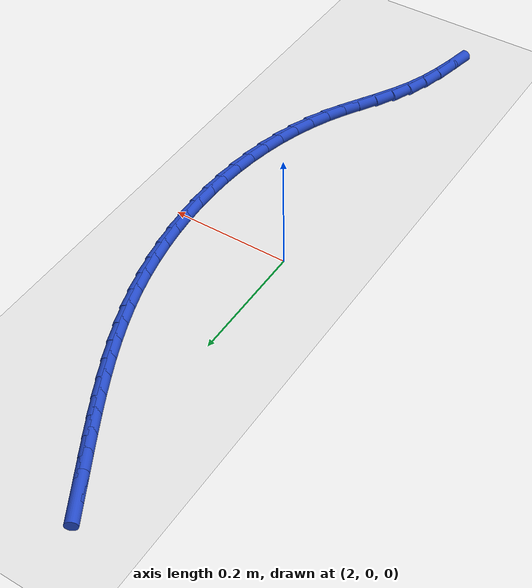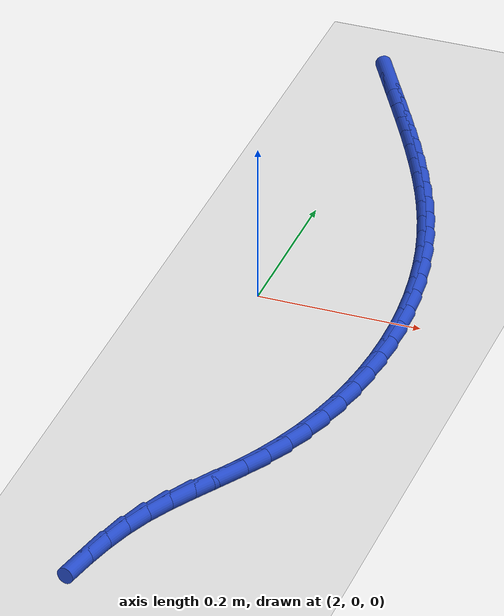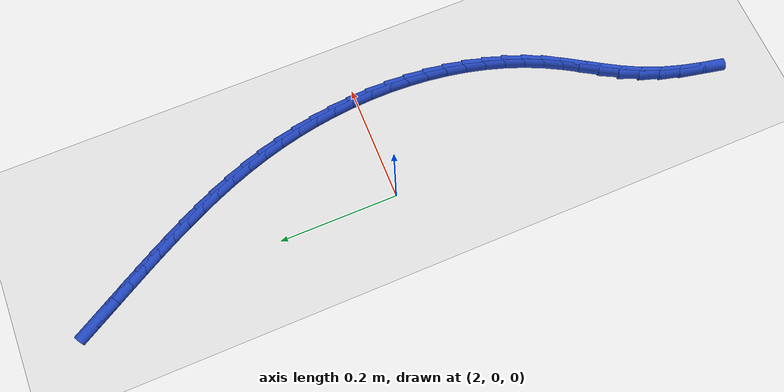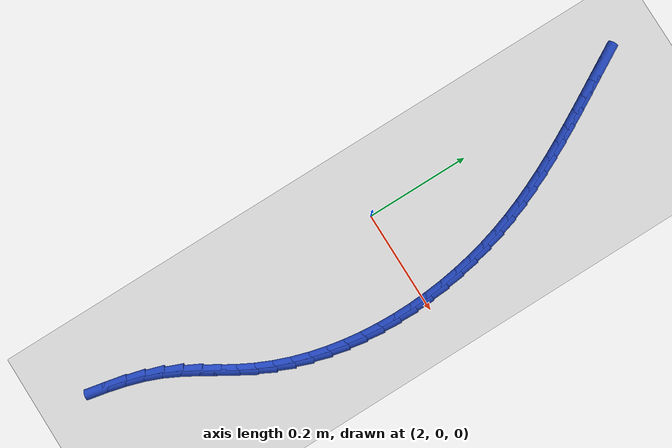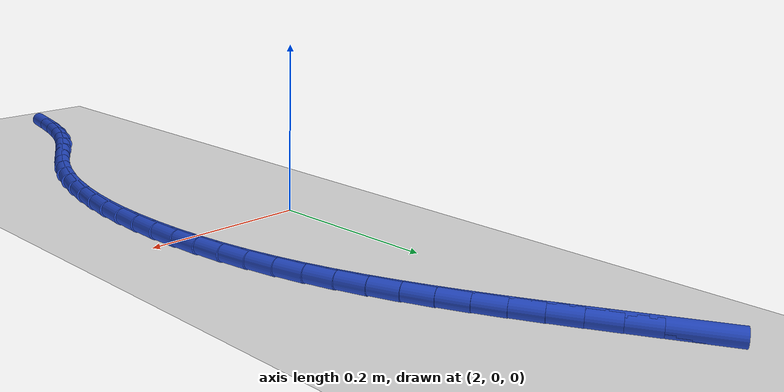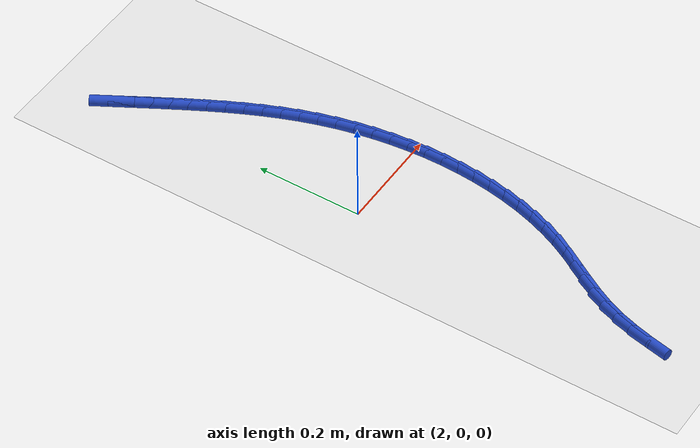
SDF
<sdf version="1.6">
 <world name="default">
  <model name="ground_plane">
   <static>1</static>
   <link name="link">
    <collision name="collision">
     <geometry><plane><normal>0 0 1</normal><size>100 100</size></plane></geometry>
     <surface><friction><ode><mu>100</mu><mu2>50</mu2></ode></friction></surface>
    </collision>
    <visual name="visual">
     <cast_shadows>0</cast_shadows>
     <geometry><plane><normal>0 0 1</normal><size>100 100</size></plane></geometry>
     <material>
      <script><uri>file://media/materials/scripts/gazebo.material</uri><name>Gazebo/WhiteGlow</name></script>
     </material>
    </visual>
   </link>
  </model>
  <model name="line">
   <link name="link_87">
    <pose>1.987801974819627 0.5035614657696744 0.01 0 1.57 -1.0558931195700973</pose>
    <collision name="collision">
     <geometry><cylinder><radius>0.01</radius><length>0.08</length></cylinder></geometry>
    </collision>
    <visual name="visual">
     <material>
      <script><name>Gazebo/Blue</name><uri>file://media/materials/scripts/gazebo.material</uri></script>
     </material>
     <geometry><cylinder><radius>0.01</radius><length>0.08</length></cylinder></geometry>
    </visual>
   </link>
   <link name="link_88">
    <pose>2.0042511495227027 0.47448975602382654 0.01 0 1.57 -1.0551968677047787</pose>
    <collision name="collision">
     <geometry><cylinder><radius>0.01</radius><length>0.08</length></cylinder></geometry>
    </collision>
    <visual name="visual">
     <material>
      <script><name>Gazebo/Blue</name><uri>file://media/materials/scripts/gazebo.material</uri></script>
     </material>
     <geometry><cylinder><radius>0.01</radius><length>0.08</length></cylinder></geometry>
    </visual>
   </link>
   <link name="link_89">
    <pose>2.020667356599426 0.4455233859962996 0.01 0 1.57 -1.0590475110282096</pose>
    <collision name="collision">
     <geometry><cylinder><radius>0.01</radius><length>0.08</length></cylinder></geometry>
    </collision>
    <visual name="visual">
     <material>
      <script><name>Gazebo/Blue</name><uri>file://media/materials/scripts/gazebo.material</uri></script>
     </material>
     <geometry><cylinder><radius>0.01</radius><length>0.08</length></cylinder></geometry>
    </visual>
   </link>
   <link name="link_90">
    <pose>2.0369230768808797 0.41658095034973774 0.01 0 1.57 -1.067482902166082</pose>
    <collision name="collision">
     <geometry><cylinder><radius>0.01</radius><length>0.08</length></cylinder></geometry>
    </collision>
    <visual name="visual">
     <material>
      <script><name>Gazebo/Blue</name><uri>file://media/materials/scripts/gazebo.material</uri></script>
     </material>
     <geometry><cylinder><radius>0.01</radius><length>0.08</length></cylinder></geometry>
    </visual>
   </link>
   <link name="link_91">
    <pose>2.0528907911981484 0.3875810437467857 0.01 0 1.57 -1.0805316544826453</pose>
    <collision name="collision">
     <geometry><cylinder><radius>0.01</radius><length>0.08</length></cylinder></geometry>
    </collision>
    <visual name="visual">
     <material>
      <script><name>Gazebo/Blue</name><uri>file://media/materials/scripts/gazebo.material</uri></script>
     </material>
     <geometry><cylinder><radius>0.01</radius><length>0.08</length></cylinder></geometry>
    </visual>
   </link>
   <link name="link_92">
    <pose>2.068442980382315 0.3584422608500875 0.01 0 1.57 -1.0982075534994828</pose>
    <collision name="collision">
     <geometry><cylinder><radius>0.01</radius><length>0.08</length></cylinder></geometry>
    </collision>
    <visual name="visual">
     <material>
      <script><name>Gazebo/Blue</name><uri>file://media/materials/scripts/gazebo.material</uri></script>
     </material>
     <geometry><cylinder><radius>0.01</radius><length>0.08</length></cylinder></geometry>
    </visual>
   </link>
   <link name="link_93">
    <pose>2.08345212526446 0.3290831963222882 0.01 0 1.57 -1.120500999814698</pose>
    <collision name="collision">
     <geometry><cylinder><radius>0.01</radius><length>0.08</length></cylinder></geometry>
    </collision>
    <visual name="visual">
     <material>
      <script><name>Gazebo/Blue</name><uri>file://media/materials/scripts/gazebo.material</uri></script>
     </material>
     <geometry><cylinder><radius>0.01</radius><length>0.08</length></cylinder></geometry>
    </visual>
   </link>
   <link name="link_94">
    <pose>2.0977907066756694 0.299422444826032 0.01 0 1.57 -1.1473676706369809</pose>
    <collision name="collision">
     <geometry><cylinder><radius>0.01</radius><length>0.08</length></cylinder></geometry>
    </collision>
    <visual name="visual">
     <material>
      <script><name>Gazebo/Blue</name><uri>file://media/materials/scripts/gazebo.material</uri></script>
     </material>
     <geometry><cylinder><radius>0.01</radius><length>0.08</length></cylinder></geometry>
    </visual>
   </link>
   <link name="link_95">
    <pose>2.1113312054470246 0.26937860102396294 0.01 0 1.57 -1.1787149221556432</pose>
    <collision name="collision">
     <geometry><cylinder><radius>0.01</radius><length>0.08</length></cylinder></geometry>
    </collision>
    <visual name="visual">
     <material>
      <script><name>Gazebo/Blue</name><uri>file://media/materials/scripts/gazebo.material</uri></script>
     </material>
     <geometry><cylinder><radius>0.01</radius><length>0.08</length></cylinder></geometry>
    </visual>
   </link>
   <link name="link_96">
    <pose>2.123946102409608 0.2388702595787262 0.01 0 1.57 -1.2143869374222098</pose>
    <collision name="collision">
     <geometry><cylinder><radius>0.01</radius><length>0.08</length></cylinder></geometry>
    </collision>
    <visual name="visual">
     <material>
      <script><name>Gazebo/Blue</name><uri>file://media/materials/scripts/gazebo.material</uri></script>
     </material>
     <geometry><cylinder><radius>0.01</radius><length>0.08</length></cylinder></geometry>
    </visual>
   </link>
   <link name="link_97">
    <pose>2.1355078783945043 0.20781601515296597 0.01 0 1.57 -1.2541502210737032</pose>
    <collision name="collision">
     <geometry><cylinder><radius>0.01</radius><length>0.08</length></cylinder></geometry>
    </collision>
    <visual name="visual">
     <material>
      <script><name>Gazebo/Blue</name><uri>file://media/materials/scripts/gazebo.material</uri></script>
     </material>
     <geometry><cylinder><radius>0.01</radius><length>0.08</length></cylinder></geometry>
    </visual>
   </link>
   <link name="link_98">
    <pose>2.1458890142327958 0.1761344624093263 0.01 0 1.57 -1.2973289870470863</pose>
    <collision name="collision">
     <geometry><cylinder><radius>0.01</radius><length>0.08</length></cylinder></geometry>
    </collision>
    <visual name="visual">
     <material>
      <script><name>Gazebo/Blue</name><uri>file://media/materials/scripts/gazebo.material</uri></script>
     </material>
     <geometry><cylinder><radius>0.01</radius><length>0.08</length></cylinder></geometry>
    </visual>
   </link>
   <link name="link_99">
    <pose>2.1549694914208324 0.14376137810756445 0.01 0 1.57 -1.3411361033142222</pose>
    <collision name="collision">
     <geometry><cylinder><radius>0.01</radius><length>0.08</length></cylinder></geometry>
    </collision>
    <visual name="visual">
     <material>
      <script><name>Gazebo/Blue</name><uri>file://media/materials/scripts/gazebo.material</uri></script>
     </material>
     <geometry><cylinder><radius>0.01</radius><length>0.08</length></cylinder></geometry>
    </visual>
   </link>
   <link name="link_100">
    <pose>2.1626847931680593 0.11075967917304792 0.01 0 1.57 -1.3846608863334027</pose>
    <collision name="collision">
     <geometry><cylinder><radius>0.01</radius><length>0.08</length></cylinder></geometry>
    </collision>
    <visual name="visual">
     <material>
      <script><name>Gazebo/Blue</name><uri>file://media/materials/scripts/gazebo.material</uri></script>
     </material>
     <geometry><cylinder><radius>0.01</radius><length>0.08</length></cylinder></geometry>
    </visual>
   </link>
   <link name="link_101">
    <pose>2.168995305000204 0.07724932734002724 0.01 0 1.57 -1.4282187004355398</pose>
    <collision name="collision">
     <geometry><cylinder><radius>0.01</radius><length>0.08</length></cylinder></geometry>
    </collision>
    <visual name="visual">
     <material>
      <script><name>Gazebo/Blue</name><uri>file://media/materials/scripts/gazebo.material</uri></script>
     </material>
     <geometry><cylinder><radius>0.01</radius><length>0.08</length></cylinder></geometry>
    </visual>
   </link>
   <link name="link_102">
    <pose>2.17386153047113 0.043350554714889224 0.01 0 1.57 -1.4721203783231147</pose>
    <collision name="collision">
     <geometry><cylinder><radius>0.01</radius><length>0.08</length></cylinder></geometry>
    </collision>
    <visual name="visual">
     <material>
      <script><name>Gazebo/Blue</name><uri>file://media/materials/scripts/gazebo.material</uri></script>
     </material>
     <geometry><cylinder><radius>0.01</radius><length>0.08</length></cylinder></geometry>
    </visual>
   </link>
   <link name="link_103">
    <pose>2.1772439731346993 0.009183593404019204 0.01 0 1.57 -1.5166697957087492</pose>
    <collision name="collision">
     <geometry><cylinder><radius>0.01</radius><length>0.08</length></cylinder></geometry>
    </collision>
    <visual name="visual">
     <material>
      <script><name>Gazebo/Blue</name><uri>file://media/materials/scripts/gazebo.material</uri></script>
     </material>
     <geometry><cylinder><radius>0.01</radius><length>0.08</length></cylinder></geometry>
    </visual>
   </link>
   <link name="link_104">
    <pose>2.1791031365447746 -0.02513132448619691 0.01 0 1.57 -1.5621662292883387</pose>
    <collision name="collision">
     <geometry><cylinder><radius>0.01</radius><length>0.08</length></cylinder></geometry>
    </collision>
    <visual name="visual">
     <material>
      <script><name>Gazebo/Blue</name><uri>file://media/materials/scripts/gazebo.material</uri></script>
     </material>
     <geometry><cylinder><radius>0.01</radius><length>0.08</length></cylinder></geometry>
    </visual>
   </link>
   <link name="link_105">
    <pose>2.179399524255217 -0.05947396684937325 0.01 0 1.57 1.5326869238924696</pose>
    <collision name="collision">
     <geometry><cylinder><radius>0.01</radius><length>0.08</length></cylinder></geometry>
    </collision>
    <visual name="visual">
     <material>
      <script><name>Gazebo/Blue</name><uri>file://media/materials/scripts/gazebo.material</uri></script>
     </material>
     <geometry><cylinder><radius>0.01</radius><length>0.08</length></cylinder></geometry>
    </visual>
   </link>
   <link name="link_106">
    <pose>2.178093639819891 -0.0937241015791248 0.01 0 1.57 1.484411418783419</pose>
    <collision name="collision">
     <geometry><cylinder><radius>0.01</radius><length>0.08</length></cylinder></geometry>
    </collision>
    <visual name="visual">
     <material>
      <script><name>Gazebo/Blue</name><uri>file://media/materials/scripts/gazebo.material</uri></script>
     </material>
     <geometry><cylinder><radius>0.01</radius><length>0.08</length></cylinder></geometry>
    </visual>
   </link>
   <link name="link_107">
    <pose>2.175145986792658 -0.1277614965690641 0.01 0 1.57 1.4343115794018848</pose>
    <collision name="collision">
     <geometry><cylinder><radius>0.01</radius><length>0.08</length></cylinder></geometry>
    </collision>
    <visual name="visual">
     <material>
      <script><name>Gazebo/Blue</name><uri>file://media/materials/scripts/gazebo.material</uri></script>
     </material>
     <geometry><cylinder><radius>0.01</radius><length>0.08</length></cylinder></geometry>
    </visual>
   </link>
   <link name="link_108">
    <pose>2.170517068727382 -0.1614659197128061 0.01 0 1.57 1.3821072164647787</pose>
    <collision name="collision">
     <geometry><cylinder><radius>0.01</radius><length>0.08</length></cylinder></geometry>
    </collision>
    <visual name="visual">
     <material>
      <script><name>Gazebo/Blue</name><uri>file://media/materials/scripts/gazebo.material</uri></script>
     </material>
     <geometry><cylinder><radius>0.01</radius><length>0.08</length></cylinder></geometry>
    </visual>
   </link>
   <link name="link_109">
    <pose>2.164167389177924 -0.194717138903965 0.01 0 1.57 1.3275323383912978</pose>
    <collision name="collision">
     <geometry><cylinder><radius>0.01</radius><length>0.08</length></cylinder></geometry>
    </collision>
    <visual name="visual">
     <material>
      <script><name>Gazebo/Blue</name><uri>file://media/materials/scripts/gazebo.material</uri></script>
     </material>
     <geometry><cylinder><radius>0.01</radius><length>0.08</length></cylinder></geometry>
    </visual>
   </link>
   <link name="link_110">
    <pose>2.156057451698147 -0.2273949220361548 0.01 0 1.57 1.2703442328906775</pose>
    <collision name="collision">
     <geometry><cylinder><radius>0.01</radius><length>0.08</length></cylinder></geometry>
    </collision>
    <visual name="visual">
     <material>
      <script><name>Gazebo/Blue</name><uri>file://media/materials/scripts/gazebo.material</uri></script>
     </material>
     <geometry><cylinder><radius>0.01</radius><length>0.08</length></cylinder></geometry>
    </visual>
   </link>
   <link name="link_111">
    <pose>2.146147759841914 -0.2593790370029898 0.01 0 1.57 1.210335978209612</pose>
    <collision name="collision">
     <geometry><cylinder><radius>0.01</radius><length>0.08</length></cylinder></geometry>
    </collision>
    <visual name="visual">
     <material>
      <script><name>Gazebo/Blue</name><uri>file://media/materials/scripts/gazebo.material</uri></script>
     </material>
     <geometry><cylinder><radius>0.01</radius><length>0.08</length></cylinder></geometry>
    </visual>
   </link>
   <link name="link_112">
    <pose>2.1343988171630865 -0.29054925169808477 0.01 0 1.57 1.1473525254350045</pose>
    <collision name="collision">
     <geometry><cylinder><radius>0.01</radius><length>0.08</length></cylinder></geometry>
    </collision>
    <visual name="visual">
     <material>
      <script><name>Gazebo/Blue</name><uri>file://media/materials/scripts/gazebo.material</uri></script>
     </material>
     <geometry><cylinder><radius>0.01</radius><length>0.08</length></cylinder></geometry>
    </visual>
   </link>
   <link name="link_113">
    <pose>2.1207711272155287 -0.3207853340150525 0.01 0 1.57 1.082526620550699</pose>
    <collision name="collision">
     <geometry><cylinder><radius>0.01</radius><length>0.08</length></cylinder></geometry>
    </collision>
    <visual name="visual">
     <material>
      <script><name>Gazebo/Blue</name><uri>file://media/materials/scripts/gazebo.material</uri></script>
     </material>
     <geometry><cylinder><radius>0.01</radius><length>0.08</length></cylinder></geometry>
    </visual>
   </link>
   <link name="link_114">
    <pose>2.1052586085443754 -0.3499898975086852 0.01 0 1.57 1.0357120804103066</pose>
    <collision name="collision">
     <geometry><cylinder><radius>0.01</radius><length>0.08</length></cylinder></geometry>
    </collision>
    <visual name="visual">
     <material>
      <script><name>Gazebo/Blue</name><uri>file://media/materials/scripts/gazebo.material</uri></script>
     </material>
     <geometry><cylinder><radius>0.01</radius><length>0.08</length></cylinder></geometry>
    </visual>
   </link>
   <link name="link_115">
    <pose>2.0883967839410094 -0.378435847828143 0.01 0 1.57 1.0231244885910853</pose>
    <collision name="collision">
     <geometry><cylinder><radius>0.01</radius><length>0.08</length></cylinder></geometry>
    </collision>
    <visual name="visual">
     <material>
      <script><name>Gazebo/Blue</name><uri>file://media/materials/scripts/gazebo.material</uri></script>
     </material>
     <geometry><cylinder><radius>0.01</radius><length>0.08</length></cylinder></geometry>
    </visual>
   </link>
   <link name="link_116">
    <pose>2.071160470083566 -0.4066964336396454 0.01 0 1.57 1.0451556700630134</pose>
    <collision name="collision">
     <geometry><cylinder><radius>0.01</radius><length>0.08</length></cylinder></geometry>
    </collision>
    <visual name="visual">
     <material>
      <script><name>Gazebo/Blue</name><uri>file://media/materials/scripts/gazebo.material</uri></script>
     </material>
     <geometry><cylinder><radius>0.01</radius><length>0.08</length></cylinder></geometry>
    </visual>
   </link>
   <link name="link_117">
    <pose>2.0545371549868676 -0.4353535669384605 0.01 0 1.57 1.1016293000730044</pose>
    <collision name="collision">
     <geometry><cylinder><radius>0.01</radius><length>0.08</length></cylinder></geometry>
    </collision>
    <visual name="visual">
     <material>
      <script><name>Gazebo/Blue</name><uri>file://media/materials/scripts/gazebo.material</uri></script>
     </material>
     <geometry><cylinder><radius>0.01</radius><length>0.08</length></cylinder></geometry>
    </visual>
   </link>
   <link name="link_118">
    <pose>2.0395143266657354 -0.46498915971985694 0.01 0 1.57 1.1870695892729743</pose>
    <collision name="collision">
     <geometry><cylinder><radius>0.01</radius><length>0.08</length></cylinder></geometry>
    </collision>
    <visual name="visual">
     <material>
      <script><name>Gazebo/Blue</name><uri>file://media/materials/scripts/gazebo.material</uri></script>
     </material>
     <geometry><cylinder><radius>0.01</radius><length>0.08</length></cylinder></geometry>
    </visual>
   </link>
   <link name="link_119">
    <pose>2.0269517643707675 -0.49610460113404165 0.01 0 1.57 1.266709615179039</pose>
    <collision name="collision">
     <geometry><cylinder><radius>0.01</radius><length>0.08</length></cylinder></geometry>
    </collision>
    <visual name="visual">
     <material>
      <script><name>Gazebo/Blue</name><uri>file://media/materials/scripts/gazebo.material</uri></script>
     </material>
     <geometry><cylinder><radius>0.01</radius><length>0.08</length></cylinder></geometry>
    </visual>
   </link>
   <link name="link_120">
    <pose>2.0167543242550163 -0.5285991828549951 0.01 0 1.57 1.3262465700602</pose>
    <collision name="collision">
     <geometry><cylinder><radius>0.01</radius><length>0.08</length></cylinder></geometry>
    </collision>
    <visual name="visual">
     <material>
      <script><name>Gazebo/Blue</name><uri>file://media/materials/scripts/gazebo.material</uri></script>
     </material>
     <geometry><cylinder><radius>0.01</radius><length>0.08</length></cylinder></geometry>
    </visual>
   </link>
   <link name="link_121">
    <pose>2.0083944904848825 -0.5620995776593029 0.01 0 1.57 1.3670542230160794</pose>
    <collision name="collision">
     <geometry><cylinder><radius>0.01</radius><length>0.08</length></cylinder></geometry>
    </collision>
    <visual name="visual">
     <material>
      <script><name>Gazebo/Blue</name><uri>file://media/materials/scripts/gazebo.material</uri></script>
     </material>
     <geometry><cylinder><radius>0.01</radius><length>0.08</length></cylinder></geometry>
    </visual>
   </link>
  </model>
 </world>
</sdf>
